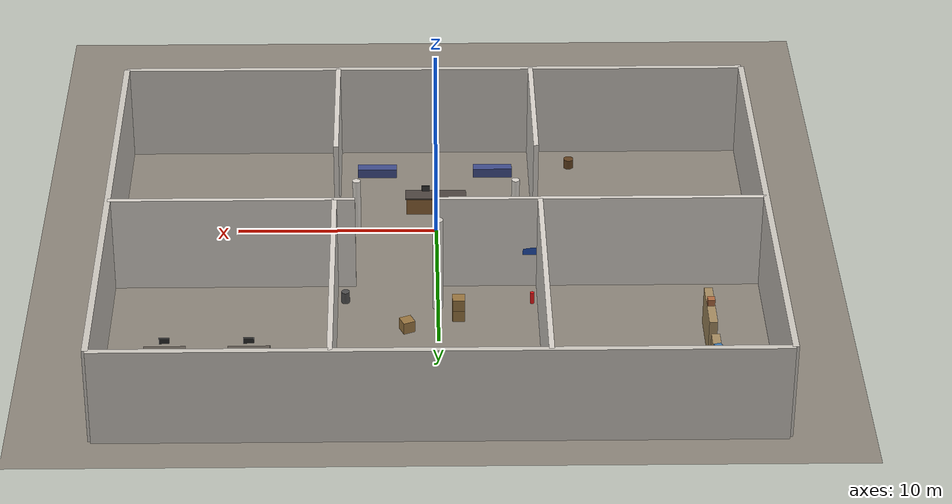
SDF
<?xml version="1.0"?>
<sdf version="1.6">
  <world name="surveillance_facility">

    <!-- ==================== PHYSICS ==================== -->
    <physics type="ode">
      <real_time_update_rate>1000</real_time_update_rate>
      <max_step_size>0.001</max_step_size>
      <real_time_factor>1</real_time_factor>
    </physics>

    <!-- ==================== LIGHTING ==================== -->

    <!-- Ambient base light (dim, like indoor fluorescent) -->
    <ambient>0.3 0.3 0.3 1</ambient>
    <background>0.1 0.1 0.1 1</background>

    <!-- Main overhead light - Entry hall -->
    <light name="ceiling_light_entry" type="point">
      <pose>0 0 4.5 0 0 0</pose>
      <diffuse>0.9 0.9 0.85 1</diffuse>
      <specular>0.2 0.2 0.2 1</specular>
      <attenuation>
        <range>12</range>
        <constant>0.4</constant>
        <linear>0.1</linear>
        <quadratic>0.01</quadratic>
      </attenuation>
      <cast_shadows>true</cast_shadows>
    </light>

    <!-- Corridor light -->
    <light name="ceiling_light_corridor" type="point">
      <pose>0 10 4.5 0 0 0</pose>
      <diffuse>0.85 0.85 0.8 1</diffuse>
      <specular>0.1 0.1 0.1 1</specular>
      <attenuation>
        <range>10</range>
        <constant>0.4</constant>
        <linear>0.1</linear>
        <quadratic>0.02</quadratic>
      </attenuation>
      <cast_shadows>false</cast_shadows>
    </light>

    <!-- Control room light -->
    <light name="ceiling_light_control" type="point">
      <pose>10 10 4.5 0 0 0</pose>
      <diffuse>0.8 0.85 0.9 1</diffuse>
      <specular>0.2 0.2 0.2 1</specular>
      <attenuation>
        <range>10</range>
        <constant>0.4</constant>
        <linear>0.1</linear>
        <quadratic>0.02</quadratic>
      </attenuation>
      <cast_shadows>true</cast_shadows>
    </light>

    <!-- Storage room light (dimmer, like a back room) -->
    <light name="ceiling_light_storage" type="point">
      <pose>-10 10 4.5 0 0 0</pose>
      <diffuse>0.6 0.6 0.55 1</diffuse>
      <specular>0.05 0.05 0.05 1</specular>
      <attenuation>
        <range>8</range>
        <constant>0.5</constant>
        <linear>0.15</linear>
        <quadratic>0.02</quadratic>
      </attenuation>
      <cast_shadows>false</cast_shadows>
    </light>

    <!-- Emergency red light near exit -->
    <light name="emergency_light" type="point">
      <pose>8 -4 3 0 0 0</pose>
      <diffuse>0.9 0.1 0.1 1</diffuse>
      <specular>0.1 0.0 0.0 1</specular>
      <attenuation>
        <range>4</range>
        <constant>0.6</constant>
        <linear>0.2</linear>
        <quadratic>0.05</quadratic>
      </attenuation>
      <cast_shadows>false</cast_shadows>
    </light>

    <!-- ==================== GROUND FLOOR ==================== -->
    <model name="floor">
      <static>true</static>
      <link name="link">
        <collision name="col">
          <geometry><plane><normal>0 0 1</normal><size>40 40</size></plane></geometry>
        </collision>
        <visual name="vis">
          <geometry><plane><normal>0 0 1</normal><size>40 40</size></plane></geometry>
          <material>
            <ambient>0.45 0.42 0.38 1</ambient>
            <diffuse>0.55 0.52 0.48 1</diffuse>
            <specular>0.05 0.05 0.05 1</specular>
          </material>
        </visual>
      </link>
    </model>

    <!-- ==================== OUTER PERIMETER WALLS ==================== -->

    <!-- South wall (bottom boundary) -->
    <model name="outer_wall_south">
      <static>true</static>
      <pose>0 -8 2.5 0 0 0</pose>
      <link name="link">
        <collision name="col"><geometry><box><size>32 0.3 5</size></box></geometry></collision>
        <visual name="vis">
          <geometry><box><size>32 0.3 5</size></box></geometry>
          <material><ambient>0.75 0.73 0.70 1</ambient><diffuse>0.80 0.78 0.75 1</diffuse></material>
        </visual>
      </link>
    </model>

    <!-- North wall (top boundary) -->
    <model name="outer_wall_north">
      <static>true</static>
      <pose>0 18 2.5 0 0 0</pose>
      <link name="link">
        <collision name="col"><geometry><box><size>32 0.3 5</size></box></geometry></collision>
        <visual name="vis">
          <geometry><box><size>32 0.3 5</size></box></geometry>
          <material><ambient>0.75 0.73 0.70 1</ambient><diffuse>0.80 0.78 0.75 1</diffuse></material>
        </visual>
      </link>
    </model>

    <!-- West wall (left boundary) -->
    <model name="outer_wall_west">
      <static>true</static>
      <pose>-16 5 2.5 0 0 0</pose>
      <link name="link">
        <collision name="col"><geometry><box><size>0.3 26 5</size></box></geometry></collision>
        <visual name="vis">
          <geometry><box><size>0.3 26 5</size></box></geometry>
          <material><ambient>0.75 0.73 0.70 1</ambient><diffuse>0.80 0.78 0.75 1</diffuse></material>
        </visual>
      </link>
    </model>

    <!-- East wall (right boundary) -->
    <model name="outer_wall_east">
      <static>true</static>
      <pose>16 5 2.5 0 0 0</pose>
      <link name="link">
        <collision name="col"><geometry><box><size>0.3 26 5</size></box></geometry></collision>
        <visual name="vis">
          <geometry><box><size>0.3 26 5</size></box></geometry>
          <material><ambient>0.75 0.73 0.70 1</ambient><diffuse>0.80 0.78 0.75 1</diffuse></material>
        </visual>
      </link>
    </model>

    <!-- ==================== INTERIOR WALLS ==================== -->

    <!-- Horizontal divider wall (splits facility north/south) - west segment -->
    <model name="divider_wall_west">
      <static>true</static>
      <pose>-8 5 2.5 0 0 0</pose>
      <link name="link">
        <collision name="col"><geometry><box><size>16 0.25 5</size></box></geometry></collision>
        <visual name="vis">
          <geometry><box><size>16 0.25 5</size></box></geometry>
          <material><ambient>0.80 0.78 0.75 1</ambient><diffuse>0.85 0.83 0.80 1</diffuse></material>
        </visual>
      </link>
    </model>

    <!-- Horizontal divider wall - east segment (gap in middle = corridor opening) -->
    <model name="divider_wall_east">
      <static>true</static>
      <pose>10 5 2.5 0 0 0</pose>
      <link name="link">
        <collision name="col"><geometry><box><size>12 0.25 5</size></box></geometry></collision>
        <visual name="vis">
          <geometry><box><size>12 0.25 5</size></box></geometry>
          <material><ambient>0.80 0.78 0.75 1</ambient><diffuse>0.85 0.83 0.80 1</diffuse></material>
        </visual>
      </link>
    </model>

    <!-- Vertical wall: separates control room from corridor (north side) -->
    <model name="control_room_wall_south">
      <static>true</static>
      <pose>5 11.5 2.5 0 0 0</pose>
      <link name="link">
        <collision name="col"><geometry><box><size>0.25 13 5</size></box></geometry></collision>
        <visual name="vis">
          <geometry><box><size>0.25 13 5</size></box></geometry>
          <material><ambient>0.80 0.78 0.75 1</ambient><diffuse>0.85 0.83 0.80 1</diffuse></material>
        </visual>
      </link>
    </model>

    <!-- Vertical wall: separates storage room from corridor (north side) -->
    <model name="storage_room_wall_south">
      <static>true</static>
      <pose>-5 11.5 2.5 0 0 0</pose>
      <link name="link">
        <collision name="col"><geometry><box><size>0.25 13 5</size></box></geometry></collision>
        <visual name="vis">
          <geometry><box><size>0.25 13 5</size></box></geometry>
          <material><ambient>0.80 0.78 0.75 1</ambient><diffuse>0.85 0.83 0.80 1</diffuse></material>
        </visual>
      </link>
    </model>

    <!-- Short wall east entry (beside main entry door) -->
    <model name="entry_wall_east">
      <static>true</static>
      <pose>5 -4 2.5 0 0 0</pose>
      <link name="link">
        <collision name="col"><geometry><box><size>0.25 8 5</size></box></geometry></collision>
        <visual name="vis">
          <geometry><box><size>0.25 8 5</size></box></geometry>
          <material><ambient>0.80 0.78 0.75 1</ambient><diffuse>0.85 0.83 0.80 1</diffuse></material>
        </visual>
      </link>
    </model>

    <!-- Short wall west entry -->
    <model name="entry_wall_west">
      <static>true</static>
      <pose>-5 -4 2.5 0 0 0</pose>
      <link name="link">
        <collision name="col"><geometry><box><size>0.25 8 5</size></box></geometry></collision>
        <visual name="vis">
          <geometry><box><size>0.25 8 5</size></box></geometry>
          <material><ambient>0.80 0.78 0.75 1</ambient><diffuse>0.85 0.83 0.80 1</diffuse></material>
        </visual>
      </link>
    </model>

    <!-- ==================== ENTRY HALL FURNITURE ==================== -->

    <!-- Reception desk -->
    <model name="reception_desk">
      <static>true</static>
      <pose>0 -2 0.45 0 0 0</pose>
      <link name="link">
        <collision name="col"><geometry><box><size>3 0.8 0.9</size></box></geometry></collision>
        <visual name="vis">
          <geometry><box><size>3 0.8 0.9</size></box></geometry>
          <material><ambient>0.45 0.30 0.15 1</ambient><diffuse>0.55 0.38 0.20 1</diffuse></material>
        </visual>
      </link>
    </model>

    <!-- Reception desk top surface -->
    <model name="reception_desk_top">
      <static>true</static>
      <pose>0 -2 0.92 0 0 0</pose>
      <link name="link">
        <collision name="col"><geometry><box><size>3.1 0.85 0.05</size></box></geometry></collision>
        <visual name="vis">
          <geometry><box><size>3.1 0.85 0.05</size></box></geometry>
          <material><ambient>0.25 0.22 0.20 1</ambient><diffuse>0.30 0.27 0.25 1</diffuse></material>
        </visual>
      </link>
    </model>

    <!-- Monitor on reception desk -->
    <model name="reception_monitor">
      <static>true</static>
      <pose>0.5 -2.1 1.25 0 0 0</pose>
      <link name="link">
        <collision name="col"><geometry><box><size>0.4 0.05 0.3</size></box></geometry></collision>
        <visual name="vis">
          <geometry><box><size>0.4 0.05 0.3</size></box></geometry>
          <material><ambient>0.15 0.15 0.15 1</ambient><diffuse>0.2 0.2 0.2 1</diffuse></material>
        </visual>
      </link>
    </model>

    <!-- Waiting bench left -->
    <model name="bench_left">
      <static>true</static>
      <pose>-3 -5.5 0.25 0 0 0</pose>
      <link name="link">
        <collision name="col"><geometry><box><size>2 0.5 0.5</size></box></geometry></collision>
        <visual name="vis">
          <geometry><box><size>2 0.5 0.5</size></box></geometry>
          <material><ambient>0.20 0.25 0.45 1</ambient><diffuse>0.25 0.30 0.55 1</diffuse></material>
        </visual>
      </link>
    </model>

    <!-- Waiting bench right -->
    <model name="bench_right">
      <static>true</static>
      <pose>3 -5.5 0.25 0 0 0</pose>
      <link name="link">
        <collision name="col"><geometry><box><size>2 0.5 0.5</size></box></geometry></collision>
        <visual name="vis">
          <geometry><box><size>2 0.5 0.5</size></box></geometry>
          <material><ambient>0.20 0.25 0.45 1</ambient><diffuse>0.25 0.30 0.55 1</diffuse></material>
        </visual>
      </link>
    </model>

    <!-- Pillar left entry -->
    <model name="pillar_entry_left">
      <static>true</static>
      <pose>-4 0 1.5 0 0 0</pose>
      <link name="link">
        <collision name="col"><geometry><cylinder><radius>0.2</radius><length>3</length></cylinder></geometry></collision>
        <visual name="vis">
          <geometry><cylinder><radius>0.2</radius><length>3</length></cylinder></geometry>
          <material><ambient>0.80 0.78 0.75 1</ambient><diffuse>0.85 0.83 0.80 1</diffuse></material>
        </visual>
      </link>
    </model>

    <!-- Pillar right entry -->
    <model name="pillar_entry_right">
      <static>true</static>
      <pose>4 0 1.5 0 0 0</pose>
      <link name="link">
        <collision name="col"><geometry><cylinder><radius>0.2</radius><length>3</length></cylinder></geometry></collision>
        <visual name="vis">
          <geometry><cylinder><radius>0.2</radius><length>3</length></cylinder></geometry>
          <material><ambient>0.80 0.78 0.75 1</ambient><diffuse>0.85 0.83 0.80 1</diffuse></material>
        </visual>
      </link>
    </model>

    <!-- ==================== CORRIDOR ==================== -->

    <!-- Corridor box/crate obstacle 1 -->
    <model name="corridor_crate_1">
      <static>true</static>
      <pose>-1 8 0.3 0 0 0</pose>
      <link name="link">
        <collision name="col"><geometry><box><size>0.6 0.6 0.6</size></box></geometry></collision>
        <visual name="vis">
          <geometry><box><size>0.6 0.6 0.6</size></box></geometry>
          <material><ambient>0.50 0.38 0.20 1</ambient><diffuse>0.60 0.46 0.25 1</diffuse></material>
        </visual>
      </link>
    </model>

    <!-- Corridor crate 2 (stacked) -->
    <model name="corridor_crate_2">
      <static>true</static>
      <pose>-1 8 0.9 0 0 0</pose>
      <link name="link">
        <collision name="col"><geometry><box><size>0.6 0.6 0.6</size></box></geometry></collision>
        <visual name="vis">
          <geometry><box><size>0.6 0.6 0.6</size></box></geometry>
          <material><ambient>0.50 0.38 0.20 1</ambient><diffuse>0.60 0.46 0.25 1</diffuse></material>
        </visual>
      </link>
    </model>

    <!-- Corridor crate 3 -->
    <model name="corridor_crate_3">
      <static>true</static>
      <pose>1.5 9 0.3 0 0 0.4</pose>
      <link name="link">
        <collision name="col"><geometry><box><size>0.6 0.6 0.6</size></box></geometry></collision>
        <visual name="vis">
          <geometry><box><size>0.6 0.6 0.6</size></box></geometry>
          <material><ambient>0.50 0.38 0.20 1</ambient><diffuse>0.60 0.46 0.25 1</diffuse></material>
        </visual>
      </link>
    </model>

    <!-- Fire extinguisher (cylindrical, red) -->
    <model name="fire_extinguisher">
      <static>true</static>
      <pose>-4.6 7 0.5 0 0 0</pose>
      <link name="link">
        <collision name="col"><geometry><cylinder><radius>0.1</radius><length>0.6</length></cylinder></geometry></collision>
        <visual name="vis">
          <geometry><cylinder><radius>0.1</radius><length>0.6</length></cylinder></geometry>
          <material><ambient>0.8 0.05 0.05 1</ambient><diffuse>0.9 0.08 0.08 1</diffuse></material>
        </visual>
      </link>
    </model>

    <!-- Trash bin -->
    <model name="trash_bin">
      <static>true</static>
      <pose>4.5 6.5 0.3 0 0 0</pose>
      <link name="link">
        <collision name="col"><geometry><cylinder><radius>0.2</radius><length>0.6</length></cylinder></geometry></collision>
        <visual name="vis">
          <geometry><cylinder><radius>0.2</radius><length>0.6</length></cylinder></geometry>
          <material><ambient>0.25 0.25 0.25 1</ambient><diffuse>0.30 0.30 0.30 1</diffuse></material>
        </visual>
      </link>
    </model>

    <!-- ==================== CONTROL ROOM (east) ==================== -->

    <!-- Control room desk 1 -->
    <model name="control_desk_1">
      <static>true</static>
      <pose>9 12 0.45 0 0 0</pose>
      <link name="link">
        <collision name="col"><geometry><box><size>2 0.8 0.9</size></box></geometry></collision>
        <visual name="vis">
          <geometry><box><size>2 0.8 0.9</size></box></geometry>
          <material><ambient>0.30 0.28 0.26 1</ambient><diffuse>0.38 0.35 0.32 1</diffuse></material>
        </visual>
      </link>
    </model>

    <!-- Control room desk 2 -->
    <model name="control_desk_2">
      <static>true</static>
      <pose>13 12 0.45 0 0 0</pose>
      <link name="link">
        <collision name="col"><geometry><box><size>2 0.8 0.9</size></box></geometry></collision>
        <visual name="vis">
          <geometry><box><size>2 0.8 0.9</size></box></geometry>
          <material><ambient>0.30 0.28 0.26 1</ambient><diffuse>0.38 0.35 0.32 1</diffuse></material>
        </visual>
      </link>
    </model>

    <!-- Monitor 1 -->
    <model name="monitor_1">
      <static>true</static>
      <pose>9 11.65 1.25 0 0 0</pose>
      <link name="link">
        <collision name="col"><geometry><box><size>0.5 0.05 0.32</size></box></geometry></collision>
        <visual name="vis">
          <geometry><box><size>0.5 0.05 0.32</size></box></geometry>
          <material><ambient>0.10 0.10 0.10 1</ambient><diffuse>0.15 0.15 0.15 1</diffuse></material>
        </visual>
      </link>
    </model>

    <!-- Monitor 2 -->
    <model name="monitor_2">
      <static>true</static>
      <pose>13 11.65 1.25 0 0 0</pose>
      <link name="link">
        <collision name="col"><geometry><box><size>0.5 0.05 0.32</size></box></geometry></collision>
        <visual name="vis">
          <geometry><box><size>0.5 0.05 0.32</size></box></geometry>
          <material><ambient>0.10 0.10 0.10 1</ambient><diffuse>0.15 0.15 0.15 1</diffuse></material>
        </visual>
      </link>
    </model>

    <!-- Server rack -->
    <model name="server_rack">
      <static>true</static>
      <pose>15.5 15 1.0 0 0 0</pose>
      <link name="link">
        <collision name="col"><geometry><box><size>0.6 0.8 2.0</size></box></geometry></collision>
        <visual name="vis">
          <geometry><box><size>0.6 0.8 2.0</size></box></geometry>
          <material><ambient>0.20 0.20 0.22 1</ambient><diffuse>0.25 0.25 0.28 1</diffuse></material>
        </visual>
      </link>
    </model>

    <!-- Office chair 1 -->
    <model name="chair_1">
      <static>true</static>
      <pose>9 13.2 0.25 0 0 3.14</pose>
      <link name="link">
        <collision name="col"><geometry><box><size>0.5 0.5 0.5</size></box></geometry></collision>
        <visual name="vis">
          <geometry><box><size>0.5 0.5 0.5</size></box></geometry>
          <material><ambient>0.15 0.15 0.18 1</ambient><diffuse>0.20 0.20 0.22 1</diffuse></material>
        </visual>
      </link>
    </model>

    <!-- Office chair 2 -->
    <model name="chair_2">
      <static>true</static>
      <pose>13 13.2 0.25 0 0 3.14</pose>
      <link name="link">
        <collision name="col"><geometry><box><size>0.5 0.5 0.5</size></box></geometry></collision>
        <visual name="vis">
          <geometry><box><size>0.5 0.5 0.5</size></box></geometry>
          <material><ambient>0.15 0.15 0.18 1</ambient><diffuse>0.20 0.20 0.22 1</diffuse></material>
        </visual>
      </link>
    </model>

    <!-- ==================== STORAGE ROOM (west) ==================== -->

    <!-- Storage shelf 1 -->
    <model name="shelf_1">
      <static>true</static>
      <pose>-13 10 1.0 0 0 0</pose>
      <link name="link">
        <collision name="col"><geometry><box><size>0.4 3 2.0</size></box></geometry></collision>
        <visual name="vis">
          <geometry><box><size>0.4 3 2.0</size></box></geometry>
          <material><ambient>0.55 0.45 0.30 1</ambient><diffuse>0.65 0.55 0.38 1</diffuse></material>
        </visual>
      </link>
    </model>

    <!-- Storage shelf 2 -->
    <model name="shelf_2">
      <static>true</static>
      <pose>-13 14 1.0 0 0 0</pose>
      <link name="link">
        <collision name="col"><geometry><box><size>0.4 3 2.0</size></box></geometry></collision>
        <visual name="vis">
          <geometry><box><size>0.4 3 2.0</size></box></geometry>
          <material><ambient>0.55 0.45 0.30 1</ambient><diffuse>0.65 0.55 0.38 1</diffuse></material>
        </visual>
      </link>
    </model>

    <!-- Storage box A -->
    <model name="storage_box_a">
      <static>true</static>
      <pose>-13 10 2.2 0 0 0</pose>
      <link name="link">
        <collision name="col"><geometry><box><size>0.35 0.35 0.35</size></box></geometry></collision>
        <visual name="vis">
          <geometry><box><size>0.35 0.35 0.35</size></box></geometry>
          <material><ambient>0.60 0.35 0.20 1</ambient><diffuse>0.70 0.42 0.25 1</diffuse></material>
        </visual>
      </link>
    </model>

    <!-- Storage box B -->
    <model name="storage_box_b">
      <static>true</static>
      <pose>-13 14 2.2 0 0 0.3</pose>
      <link name="link">
        <collision name="col"><geometry><box><size>0.35 0.35 0.35</size></box></geometry></collision>
        <visual name="vis">
          <geometry><box><size>0.35 0.35 0.35</size></box></geometry>
          <material><ambient>0.20 0.40 0.60 1</ambient><diffuse>0.25 0.48 0.70 1</diffuse></material>
        </visual>
      </link>
    </model>

    <!-- Large storage barrel -->
    <model name="barrel_1">
      <static>true</static>
      <pose>-10 16 0.5 0 0 0</pose>
      <link name="link">
        <collision name="col"><geometry><cylinder><radius>0.3</radius><length>1.0</length></cylinder></geometry></collision>
        <visual name="vis">
          <geometry><cylinder><radius>0.3</radius><length>1.0</length></cylinder></geometry>
          <material><ambient>0.55 0.45 0.10 1</ambient><diffuse>0.65 0.55 0.15 1</diffuse></material>
        </visual>
      </link>
    </model>

    <!-- Large storage barrel 2 -->
    <model name="barrel_2">
      <static>true</static>
      <pose>-8.5 16 0.5 0 0 0</pose>
      <link name="link">
        <collision name="col"><geometry><cylinder><radius>0.3</radius><length>1.0</length></cylinder></geometry></collision>
        <visual name="vis">
          <geometry><cylinder><radius>0.3</radius><length>1.0</length></cylinder></geometry>
          <material><ambient>0.55 0.45 0.10 1</ambient><diffuse>0.65 0.55 0.15 1</diffuse></material>
        </visual>
      </link>
    </model>

    <!-- ==================== MISC OBSTACLES (for surveillance interest) ==================== -->

    <!-- Parked trolley in south hall -->
    <model name="trolley">
      <static>true</static>
      <pose>-7 2 0.4 0 0 0.5</pose>
      <link name="link">
        <collision name="col"><geometry><box><size>1.0 0.5 0.8</size></box></geometry></collision>
        <visual name="vis">
          <geometry><box><size>1.0 0.5 0.8</size></box></geometry>
          <material><ambient>0.60 0.60 0.60 1</ambient><diffuse>0.70 0.70 0.70 1</diffuse></material>
        </visual>
      </link>
    </model>

    <!-- Plant/obstruction near west wall -->
    <model name="plant_pot">
      <static>true</static>
      <pose>-7 -6 0.4 0 0 0</pose>
      <link name="link">
        <collision name="col"><geometry><cylinder><radius>0.25</radius><length>0.5</length></cylinder></geometry></collision>
        <visual name="vis">
          <geometry><cylinder><radius>0.25</radius><length>0.5</length></cylinder></geometry>
          <material><ambient>0.30 0.20 0.10 1</ambient><diffuse>0.38 0.25 0.12 1</diffuse></material>
        </visual>
      </link>
    </model>

    <!-- Pillar in main corridor -->
    <model name="corridor_pillar_1">
      <static>true</static>
      <pose>0 7 2.5 0 0 0</pose>
      <link name="link">
        <collision name="col"><geometry><cylinder><radius>0.25</radius><length>5</length></cylinder></geometry></collision>
        <visual name="vis">
          <geometry><cylinder><radius>0.25</radius><length>5</length></cylinder></geometry>
          <material><ambient>0.78 0.76 0.73 1</ambient><diffuse>0.83 0.81 0.78 1</diffuse></material>
        </visual>
      </link>
    </model>

    <!-- Sign board (flat panel on wall) -->
    <model name="sign_board">
      <static>true</static>
      <pose>-4.7 5.1 2.0 0 0 1.5708</pose>
      <link name="link">
        <collision name="col"><geometry><box><size>0.05 1.0 0.4</size></box></geometry></collision>
        <visual name="vis">
          <geometry><box><size>0.05 1.0 0.4</size></box></geometry>
          <material><ambient>0.10 0.25 0.60 1</ambient><diffuse>0.12 0.30 0.70 1</diffuse></material>
        </visual>
      </link>
    </model>

  </world>
</sdf>
